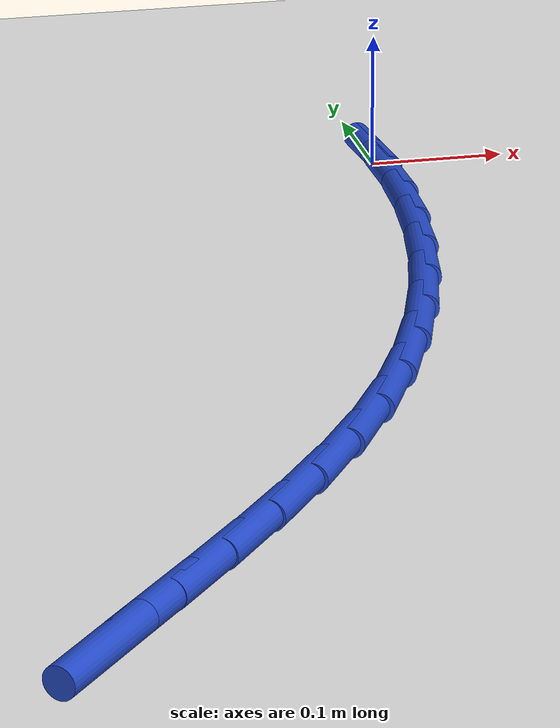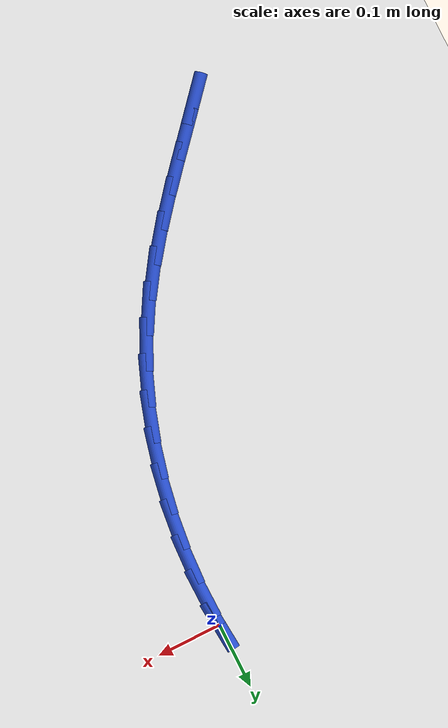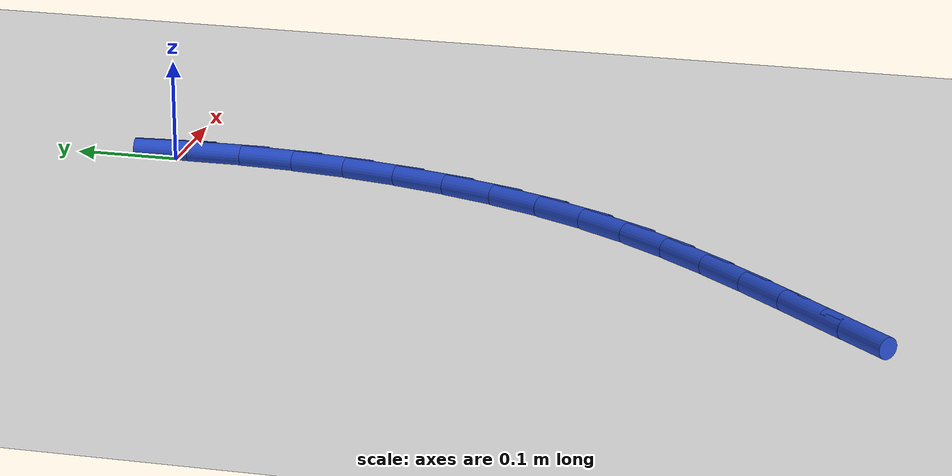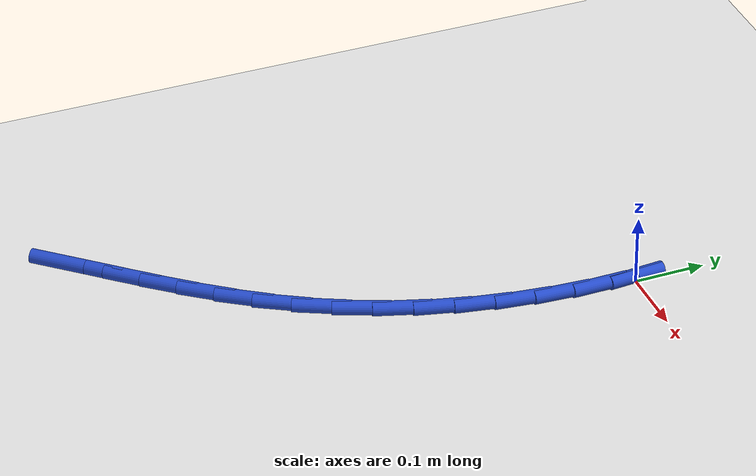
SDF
<sdf version="1.6">
 <world name="default">
  <model name="ground_plane">
   <static>1</static>
   <link name="link">
    <collision name="collision">
     <geometry><plane><normal>0 0 1</normal><size>100 100</size></plane></geometry>
     <surface><friction><ode><mu>100</mu><mu2>50</mu2></ode></friction></surface>
    </collision>
    <visual name="visual">
     <cast_shadows>0</cast_shadows>
     <geometry><plane><normal>0 0 1</normal><size>100 100</size></plane></geometry>
     <material>
      <script><uri>file://media/materials/scripts/gazebo.material</uri><name>Gazebo/WhiteGlow</name></script>
     </material>
    </visual>
   </link>
  </model>
  <model name="line">
   <link name="link_0">
    <pose>2.7755575615628914e-17 6.938893903907228e-17 0.01 0 1.57 -1.4930343946396438</pose>
    <collision name="collision">
     <geometry><cylinder><radius>0.01</radius><length>0.08</length></cylinder></geometry>
    </collision>
    <visual name="visual">
     <material>
      <script><name>Gazebo/Blue</name><uri>file://media/materials/scripts/gazebo.material</uri></script>
     </material>
     <geometry><cylinder><radius>0.01</radius><length>0.08</length></cylinder></geometry>
    </visual>
   </link>
   <link name="link_125">
    <pose>-0.31725385430052633 -0.7107747554159416 0.01 0 1.57 0.8491840470515827</pose>
    <collision name="collision">
     <geometry><cylinder><radius>0.01</radius><length>0.08</length></cylinder></geometry>
    </collision>
    <visual name="visual">
     <material>
      <script><name>Gazebo/Blue</name><uri>file://media/materials/scripts/gazebo.material</uri></script>
     </material>
     <geometry><cylinder><radius>0.01</radius><length>0.08</length></cylinder></geometry>
    </visual>
   </link>
   <link name="link_126">
    <pose>-0.28162618778778964 -0.6702852953034255 0.01 0 1.57 0.8464863844113287</pose>
    <collision name="collision">
     <geometry><cylinder><radius>0.01</radius><length>0.08</length></cylinder></geometry>
    </collision>
    <visual name="visual">
     <material>
      <script><name>Gazebo/Blue</name><uri>file://media/materials/scripts/gazebo.material</uri></script>
     </material>
     <geometry><cylinder><radius>0.01</radius><length>0.08</length></cylinder></geometry>
    </visual>
   </link>
   <link name="link_127">
    <pose>-0.24611496192197976 -0.6301470187866166 0.01 0 1.57 0.8578169361001103</pose>
    <collision name="collision">
     <geometry><cylinder><radius>0.01</radius><length>0.08</length></cylinder></geometry>
    </collision>
    <visual name="visual">
     <material>
      <script><name>Gazebo/Blue</name><uri>file://media/materials/scripts/gazebo.material</uri></script>
     </material>
     <geometry><cylinder><radius>0.01</radius><length>0.08</length></cylinder></geometry>
    </visual>
   </link>
   <link name="link_128">
    <pose>-0.21128695012918883 -0.5898705009434542 0.01 0 1.57 0.8834439850902027</pose>
    <collision name="collision">
     <geometry><cylinder><radius>0.01</radius><length>0.08</length></cylinder></geometry>
    </collision>
    <visual name="visual">
     <material>
      <script><name>Gazebo/Blue</name><uri>file://media/materials/scripts/gazebo.material</uri></script>
     </material>
     <geometry><cylinder><radius>0.01</radius><length>0.08</length></cylinder></geometry>
    </visual>
   </link>
   <link name="link_129">
    <pose>-0.1777089258355096 -0.5489663168518784 0.01 0 1.57 0.9235695572242291</pose>
    <collision name="collision">
     <geometry><cylinder><radius>0.01</radius><length>0.08</length></cylinder></geometry>
    </collision>
    <visual name="visual">
     <material>
      <script><name>Gazebo/Blue</name><uri>file://media/materials/scripts/gazebo.material</uri></script>
     </material>
     <geometry><cylinder><radius>0.01</radius><length>0.08</length></cylinder></geometry>
    </visual>
   </link>
   <link name="link_130">
    <pose>-0.14594766246703486 -0.506945041589829 0.01 0 1.57 0.9781659892133933</pose>
    <collision name="collision">
     <geometry><cylinder><radius>0.01</radius><length>0.08</length></cylinder></geometry>
    </collision>
    <visual name="visual">
     <material>
      <script><name>Gazebo/Blue</name><uri>file://media/materials/scripts/gazebo.material</uri></script>
     </material>
     <geometry><cylinder><radius>0.01</radius><length>0.08</length></cylinder></geometry>
    </visual>
   </link>
   <link name="link_131">
    <pose>-0.11656993344985694 -0.4633172502352458 0.01 0 1.57 1.0466032734486383</pose>
    <collision name="collision">
     <geometry><cylinder><radius>0.01</radius><length>0.08</length></cylinder></geometry>
    </collision>
    <visual name="visual">
     <material>
      <script><name>Gazebo/Blue</name><uri>file://media/materials/scripts/gazebo.material</uri></script>
     </material>
     <geometry><cylinder><radius>0.01</radius><length>0.08</length></cylinder></geometry>
    </visual>
   </link>
   <link name="link_132">
    <pose>-0.0901386004682609 -0.4175996042130442 0.01 0 1.57 1.1214768354201161</pose>
    <collision name="collision">
     <geometry><cylinder><radius>0.01</radius><length>0.08</length></cylinder></geometry>
    </collision>
    <visual name="visual">
     <material>
      <script><name>Gazebo/Blue</name><uri>file://media/materials/scripts/gazebo.material</uri></script>
     </material>
     <geometry><cylinder><radius>0.01</radius><length>0.08</length></cylinder></geometry>
    </visual>
   </link>
   <link name="link_133">
    <pose>-0.06700824975984869 -0.3696328243305781 0.01 0 1.57 1.1933140973779919</pose>
    <collision name="collision">
     <geometry><cylinder><radius>0.01</radius><length>0.08</length></cylinder></geometry>
    </collision>
    <visual name="visual">
     <material>
      <script><name>Gazebo/Blue</name><uri>file://media/materials/scripts/gazebo.material</uri></script>
     </material>
     <geometry><cylinder><radius>0.01</radius><length>0.08</length></cylinder></geometry>
    </visual>
   </link>
   <link name="link_134">
    <pose>-0.0472249843741403 -0.31973760574174864 0.01 0 1.57 1.2620372217382598</pose>
    <collision name="collision">
     <geometry><cylinder><radius>0.01</radius><length>0.08</length></cylinder></geometry>
    </collision>
    <visual name="visual">
     <material>
      <script><name>Gazebo/Blue</name><uri>file://media/materials/scripts/gazebo.material</uri></script>
     </material>
     <geometry><cylinder><radius>0.01</radius><length>0.08</length></cylinder></geometry>
    </visual>
   </link>
   <link name="link_135">
    <pose>-0.030809979599766408 -0.268273429136285 0.01 0 1.57 1.3283716450775016</pose>
    <collision name="collision">
     <geometry><cylinder><radius>0.01</radius><length>0.08</length></cylinder></geometry>
    </collision>
    <visual name="visual">
     <material>
      <script><name>Gazebo/Blue</name><uri>file://media/materials/scripts/gazebo.material</uri></script>
     </material>
     <geometry><cylinder><radius>0.01</radius><length>0.08</length></cylinder></geometry>
    </visual>
   </link>
   <link name="link_136">
    <pose>-0.0177844107253584 -0.21559977520391801 0.01 0 1.57 1.3930526718035254</pose>
    <collision name="collision">
     <geometry><cylinder><radius>0.01</radius><length>0.08</length></cylinder></geometry>
    </collision>
    <visual name="visual">
     <material>
      <script><name>Gazebo/Blue</name><uri>file://media/materials/scripts/gazebo.material</uri></script>
     </material>
     <geometry><cylinder><radius>0.01</radius><length>0.08</length></cylinder></geometry>
    </visual>
   </link>
   <link name="link_137">
    <pose>-0.008169453039546862 -0.16207612463437654 0.01 0 1.57 1.456819314976255</pose>
    <collision name="collision">
     <geometry><cylinder><radius>0.01</radius><length>0.08</length></cylinder></geometry>
    </collision>
    <visual name="visual">
     <material>
      <script><name>Gazebo/Blue</name><uri>file://media/materials/scripts/gazebo.material</uri></script>
     </material>
     <geometry><cylinder><radius>0.01</radius><length>0.08</length></cylinder></geometry>
    </visual>
   </link>
   <link name="link_138">
    <pose>-0.001986281830962692 -0.10806195811739017 0.01 0 1.57 1.5204151486721496</pose>
    <collision name="collision">
     <geometry><cylinder><radius>0.01</radius><length>0.08</length></cylinder></geometry>
    </collision>
    <visual name="visual">
     <material>
      <script><name>Gazebo/Blue</name><uri>file://media/materials/scripts/gazebo.material</uri></script>
     </material>
     <geometry><cylinder><radius>0.01</radius><length>0.08</length></cylinder></geometry>
    </visual>
   </link>
   <link name="link_139">
    <pose>0.0007439276117632444 -0.05391675634268835 0.01 0 1.57 -1.5569994951829618</pose>
    <collision name="collision">
     <geometry><cylinder><radius>0.01</radius><length>0.08</length></cylinder></geometry>
    </collision>
    <visual name="visual">
     <material>
      <script><name>Gazebo/Blue</name><uri>file://media/materials/scripts/gazebo.material</uri></script>
     </material>
     <geometry><cylinder><radius>0.01</radius><length>0.08</length></cylinder></geometry>
    </visual>
   </link>
   <link name="link_140">
    <pose>1.734723475976807e-17 1.8041124150158794e-16 0.01 0 1.57 -1.491470672824504</pose>
    <collision name="collision">
     <geometry><cylinder><radius>0.01</radius><length>0.08</length></cylinder></geometry>
    </collision>
    <visual name="visual">
     <material>
      <script><name>Gazebo/Blue</name><uri>file://media/materials/scripts/gazebo.material</uri></script>
     </material>
     <geometry><cylinder><radius>0.01</radius><length>0.08</length></cylinder></geometry>
    </visual>
   </link>
  </model>
 </world>
</sdf>
